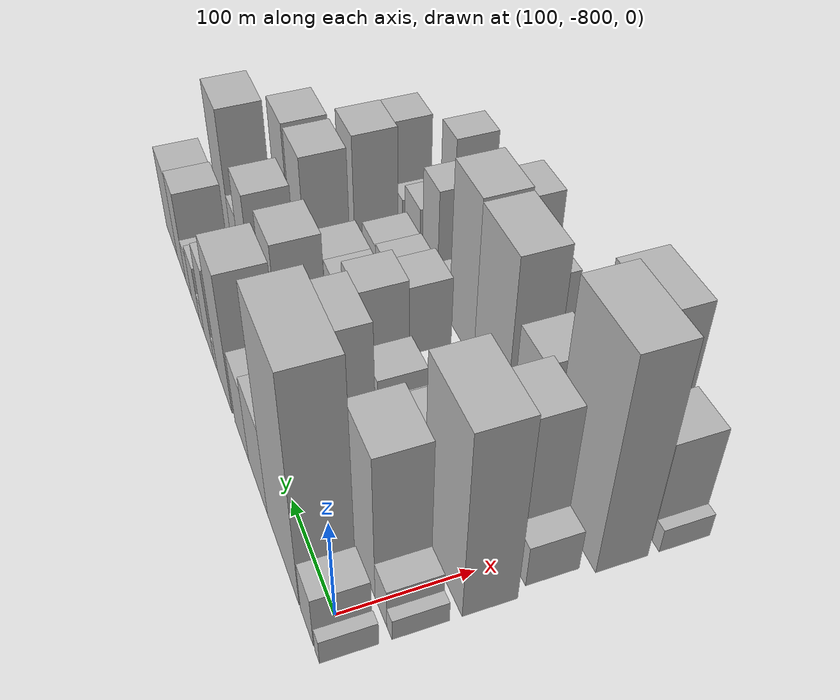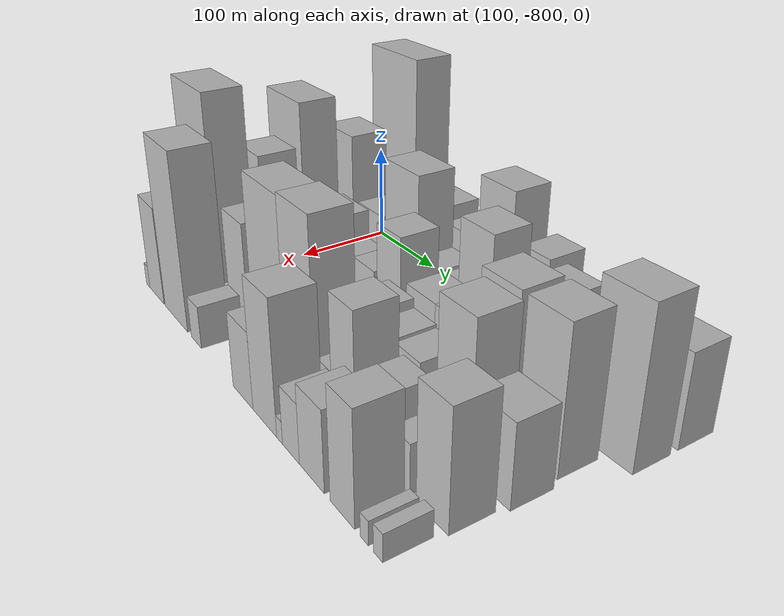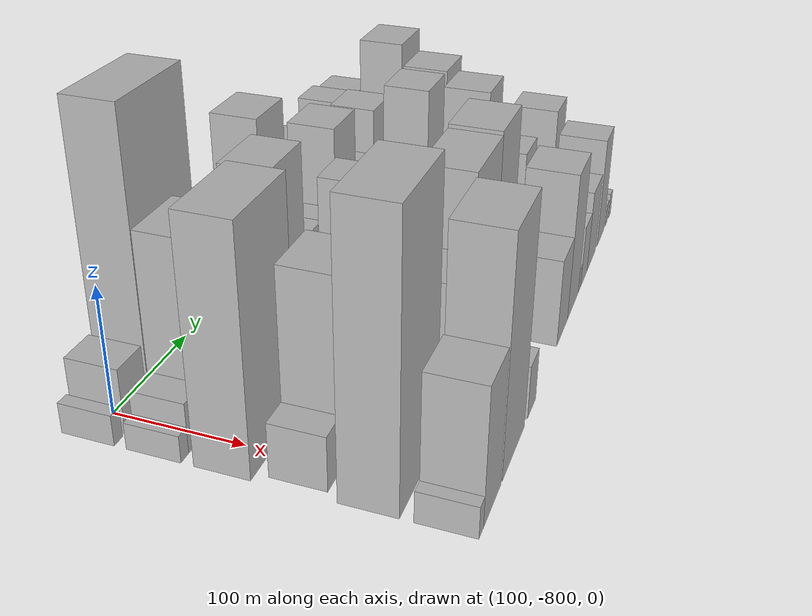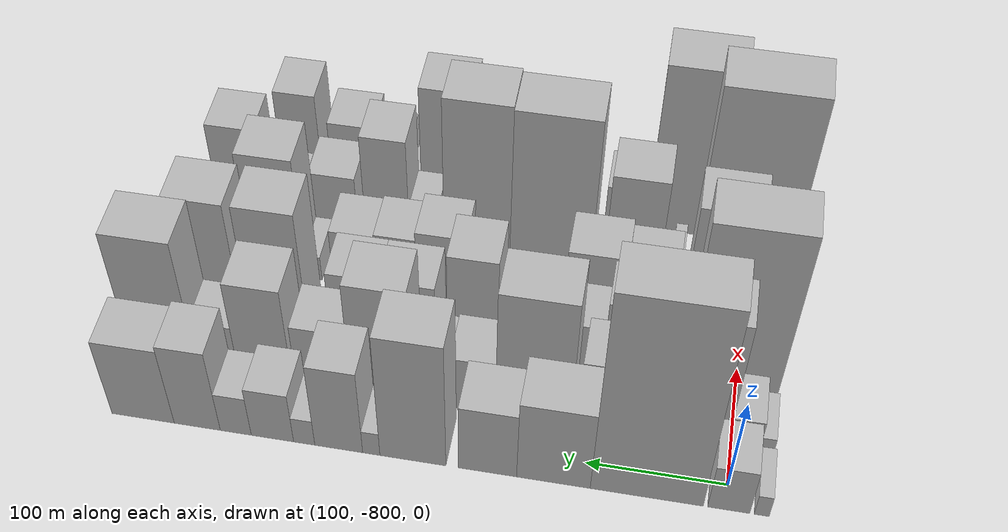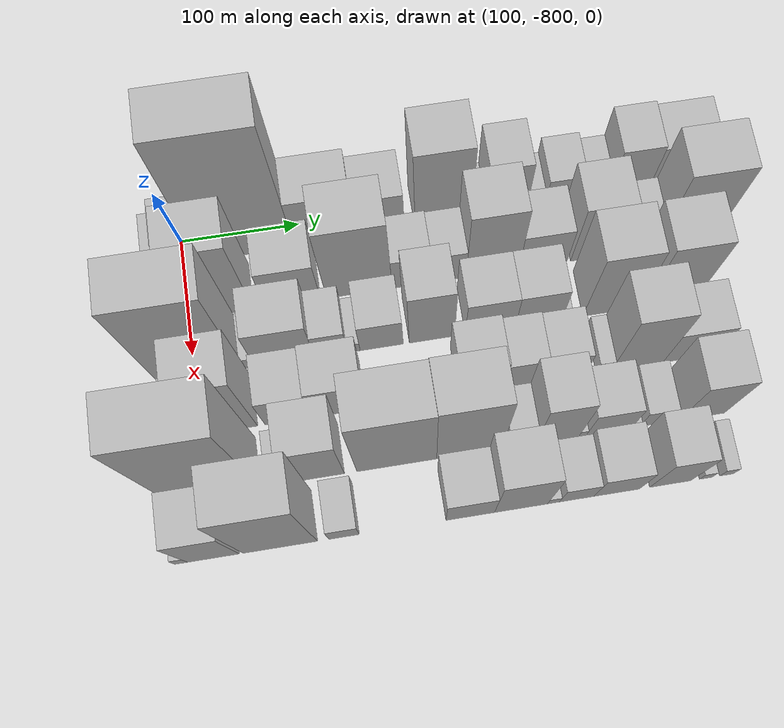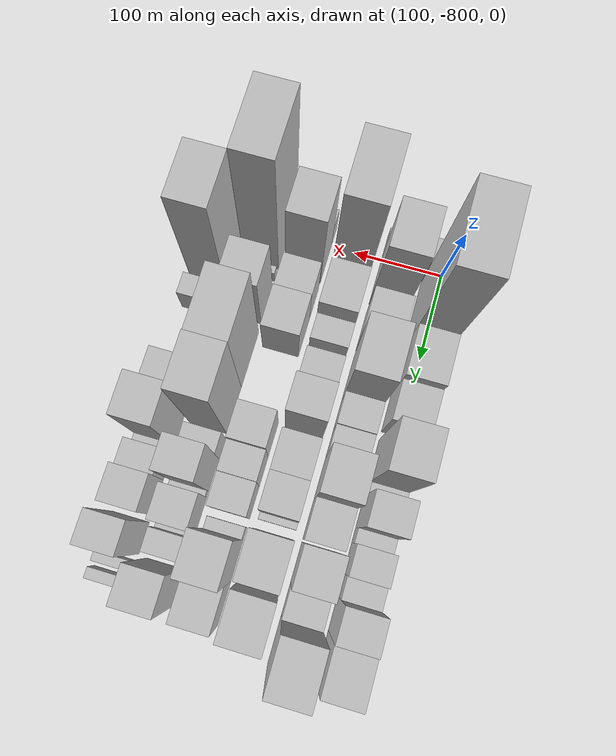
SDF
<sdf version="1.6">
 <world name="default">
  <model name="building_1">
   <static>1</static>
   <pose>100.0000 -824.8675 0 0.000000 0.000000 0.000000</pose>
   <link name="link">
    <pose>0 0 12.00 0 0 0</pose>
    <collision name="collision"><geometry><box><size>40.0000 10.2650 24.0000</size></box></geometry></collision>
    <visual name="visual">
     <cast_shadows>0</cast_shadows>
     <geometry><box><size>40.0000 10.2650 24.0000</size></box></geometry>
     <material>
      <script>
       <uri>model://HANNAS_wall/materials/scripts</uri>
       <uri>model://HANNAS_wall/materials/textures</uri>
       <name>vrc/HANNAS_wall</name>
      </script>
     </material>
    </visual>
   </link>
  </model>
  <model name="building_2">
   <static>1</static>
   <pose>100.0000 -802.2113 0 0.000000 0.000000 0.000000</pose>
   <link name="link">
    <pose>0 0 25.50 0 0 0</pose>
    <collision name="collision"><geometry><box><size>40.0000 29.0475 51.0000</size></box></geometry></collision>
    <visual name="visual">
     <cast_shadows>0</cast_shadows>
     <geometry><box><size>40.0000 29.0475 51.0000</size></box></geometry>
     <material>
      <script>
       <uri>model://HANNAS_wall/materials/scripts</uri>
       <uri>model://HANNAS_wall/materials/textures</uri>
       <name>vrc/HANNAS_wall</name>
      </script>
     </material>
    </visual>
   </link>
  </model>
  <model name="building_3">
   <static>1</static>
   <pose>100.0000 -745.2766 0 0.000000 0.000000 0.000000</pose>
   <link name="link">
    <pose>0 0 111.00 0 0 0</pose>
    <collision name="collision"><geometry><box><size>40.0000 78.8218 222.0000</size></box></geometry></collision>
    <visual name="visual">
     <cast_shadows>0</cast_shadows>
     <geometry><box><size>40.0000 78.8218 222.0000</size></box></geometry>
     <material>
      <script>
       <uri>model://HANNAS_wall/materials/scripts</uri>
       <uri>model://HANNAS_wall/materials/textures</uri>
       <name>vrc/HANNAS_wall</name>
      </script>
     </material>
    </visual>
   </link>
  </model>
  <model name="building_4">
   <static>1</static>
   <pose>100.0000 -679.8648 0 0.000000 0.000000 0.000000</pose>
   <link name="link">
    <pose>0 0 45.00 0 0 0</pose>
    <collision name="collision"><geometry><box><size>40.0000 52.0016 90.0000</size></box></geometry></collision>
    <visual name="visual">
     <cast_shadows>0</cast_shadows>
     <geometry><box><size>40.0000 52.0016 90.0000</size></box></geometry>
     <material>
      <script>
       <uri>model://HANNAS_wall/materials/scripts</uri>
       <uri>model://HANNAS_wall/materials/textures</uri>
       <name>vrc/HANNAS_wall</name>
      </script>
     </material>
    </visual>
   </link>
  </model>
  <model name="building_5">
   <static>1</static>
   <pose>100.0000 -633.1377 0 0.000000 0.000000 0.000000</pose>
   <link name="link">
    <pose>0 0 37.50 0 0 0</pose>
    <collision name="collision"><geometry><box><size>40.0000 41.4525 75.0000</size></box></geometry></collision>
    <visual name="visual">
     <cast_shadows>0</cast_shadows>
     <geometry><box><size>40.0000 41.4525 75.0000</size></box></geometry>
     <material>
      <script>
       <uri>model://HANNAS_wall/materials/scripts</uri>
       <uri>model://HANNAS_wall/materials/textures</uri>
       <name>vrc/HANNAS_wall</name>
      </script>
     </material>
    </visual>
   </link>
  </model>
  <model name="building_6">
   <static>1</static>
   <pose>100.0000 -579.5908 0 0.000000 0.000000 0.000000</pose>
   <link name="link">
    <pose>0 0 70.50 0 0 0</pose>
    <collision name="collision"><geometry><box><size>40.0000 47.6413 141.0000</size></box></geometry></collision>
    <visual name="visual">
     <cast_shadows>0</cast_shadows>
     <geometry><box><size>40.0000 47.6413 141.0000</size></box></geometry>
     <material>
      <script>
       <uri>model://HANNAS_wall/materials/scripts</uri>
       <uri>model://HANNAS_wall/materials/textures</uri>
       <name>vrc/HANNAS_wall</name>
      </script>
     </material>
    </visual>
   </link>
  </model>
  <model name="building_7">
   <static>1</static>
   <pose>100.0000 -549.5159 0 0.000000 0.000000 0.000000</pose>
   <link name="link">
    <pose>0 0 13.50 0 0 0</pose>
    <collision name="collision"><geometry><box><size>40.0000 12.5085 27.0000</size></box></geometry></collision>
    <visual name="visual">
     <cast_shadows>0</cast_shadows>
     <geometry><box><size>40.0000 12.5085 27.0000</size></box></geometry>
     <material>
      <script>
       <uri>model://HANNAS_wall/materials/scripts</uri>
       <uri>model://HANNAS_wall/materials/textures</uri>
       <name>vrc/HANNAS_wall</name>
      </script>
     </material>
    </visual>
   </link>
  </model>
  <model name="building_8">
   <static>1</static>
   <pose>100.0000 -525.7927 0 0.000000 0.000000 0.000000</pose>
   <link name="link">
    <pose>0 0 48.00 0 0 0</pose>
    <collision name="collision"><geometry><box><size>40.0000 34.9379 96.0000</size></box></geometry></collision>
    <visual name="visual">
     <cast_shadows>0</cast_shadows>
     <geometry><box><size>40.0000 34.9379 96.0000</size></box></geometry>
     <material>
      <script>
       <uri>model://HANNAS_wall/materials/scripts</uri>
       <uri>model://HANNAS_wall/materials/textures</uri>
       <name>vrc/HANNAS_wall</name>
      </script>
     </material>
    </visual>
   </link>
  </model>
  <model name="building_9">
   <static>1</static>
   <pose>100.0000 -500.5499 0 0.000000 0.000000 0.000000</pose>
   <link name="link">
    <pose>0 0 15.00 0 0 0</pose>
    <collision name="collision"><geometry><box><size>40.0000 15.5478 30.0000</size></box></geometry></collision>
    <visual name="visual">
     <cast_shadows>0</cast_shadows>
     <geometry><box><size>40.0000 15.5478 30.0000</size></box></geometry>
     <material>
      <script>
       <uri>model://HANNAS_wall/materials/scripts</uri>
       <uri>model://HANNAS_wall/materials/textures</uri>
       <name>vrc/HANNAS_wall</name>
      </script>
     </material>
    </visual>
   </link>
  </model>
  <model name="building_10">
   <static>1</static>
   <pose>100.0000 -477.1615 0 0.000000 0.000000 0.000000</pose>
   <link name="link">
    <pose>0 0 28.50 0 0 0</pose>
    <collision name="collision"><geometry><box><size>40.0000 31.2288 57.0000</size></box></geometry></collision>
    <visual name="visual">
     <cast_shadows>0</cast_shadows>
     <geometry><box><size>40.0000 31.2288 57.0000</size></box></geometry>
     <material>
      <script>
       <uri>model://HANNAS_wall/materials/scripts</uri>
       <uri>model://HANNAS_wall/materials/textures</uri>
       <name>vrc/HANNAS_wall</name>
      </script>
     </material>
    </visual>
   </link>
  </model>
  <model name="building_11">
   <static>1</static>
   <pose>100.0000 -450.0540 0 0.000000 0.000000 0.000000</pose>
   <link name="link">
    <pose>0 0 22.50 0 0 0</pose>
    <collision name="collision"><geometry><box><size>40.0000 22.9864 45.0000</size></box></geometry></collision>
    <visual name="visual">
     <cast_shadows>0</cast_shadows>
     <geometry><box><size>40.0000 22.9864 45.0000</size></box></geometry>
     <material>
      <script>
       <uri>model://HANNAS_wall/materials/scripts</uri>
       <uri>model://HANNAS_wall/materials/textures</uri>
       <name>vrc/HANNAS_wall</name>
      </script>
     </material>
    </visual>
   </link>
  </model>
  <model name="building_12">
   <static>1</static>
   <pose>100.0000 -421.3638 0 0.000000 0.000000 0.000000</pose>
   <link name="link">
    <pose>0 0 46.50 0 0 0</pose>
    <collision name="collision"><geometry><box><size>40.0000 34.3939 93.0000</size></box></geometry></collision>
    <visual name="visual">
     <cast_shadows>0</cast_shadows>
     <geometry><box><size>40.0000 34.3939 93.0000</size></box></geometry>
     <material>
      <script>
       <uri>model://HANNAS_wall/materials/scripts</uri>
       <uri>model://HANNAS_wall/materials/textures</uri>
       <name>vrc/HANNAS_wall</name>
      </script>
     </material>
    </visual>
   </link>
  </model>
  <model name="building_13">
   <static>1</static>
   <pose>100.0000 -380.7621 0 0.000000 0.000000 0.000000</pose>
   <link name="link">
    <pose>0 0 43.50 0 0 0</pose>
    <collision name="collision"><geometry><box><size>40.0000 46.8095 87.0000</size></box></geometry></collision>
    <visual name="visual">
     <cast_shadows>0</cast_shadows>
     <geometry><box><size>40.0000 46.8095 87.0000</size></box></geometry>
     <material>
      <script>
       <uri>model://HANNAS_wall/materials/scripts</uri>
       <uri>model://HANNAS_wall/materials/textures</uri>
       <name>vrc/HANNAS_wall</name>
      </script>
     </material>
    </visual>
   </link>
  </model>
  <model name="building_47">
   <static>1</static>
   <pose>149.0000 -824.9712 0 0.000000 0.000000 0.000000</pose>
   <link name="link">
    <pose>0 0 10.50 0 0 0</pose>
    <collision name="collision"><geometry><box><size>40.0000 10.0576 21.0000</size></box></geometry></collision>
    <visual name="visual">
     <cast_shadows>0</cast_shadows>
     <geometry><box><size>40.0000 10.0576 21.0000</size></box></geometry>
     <material>
      <script>
       <uri>model://HANNAS_wall/materials/scripts</uri>
       <uri>model://HANNAS_wall/materials/textures</uri>
       <name>vrc/HANNAS_wall</name>
      </script>
     </material>
    </visual>
   </link>
  </model>
  <model name="building_48">
   <static>1</static>
   <pose>149.0000 -808.4320 0 0.000000 0.000000 0.000000</pose>
   <link name="link">
    <pose>0 0 19.50 0 0 0</pose>
    <collision name="collision"><geometry><box><size>40.0000 23.0208 39.0000</size></box></geometry></collision>
    <visual name="visual">
     <cast_shadows>0</cast_shadows>
     <geometry><box><size>40.0000 23.0208 39.0000</size></box></geometry>
     <material>
      <script>
       <uri>model://HANNAS_wall/materials/scripts</uri>
       <uri>model://HANNAS_wall/materials/textures</uri>
       <name>vrc/HANNAS_wall</name>
      </script>
     </material>
    </visual>
   </link>
  </model>
  <model name="building_49">
   <static>1</static>
   <pose>149.0000 -771.4992 0 0.000000 0.000000 0.000000</pose>
   <link name="link">
    <pose>0 0 72.00 0 0 0</pose>
    <collision name="collision"><geometry><box><size>40.0000 50.8447 144.0000</size></box></geometry></collision>
    <visual name="visual">
     <cast_shadows>0</cast_shadows>
     <geometry><box><size>40.0000 50.8447 144.0000</size></box></geometry>
     <material>
      <script>
       <uri>model://HANNAS_wall/materials/scripts</uri>
       <uri>model://HANNAS_wall/materials/textures</uri>
       <name>vrc/HANNAS_wall</name>
      </script>
     </material>
    </visual>
   </link>
  </model>
  <model name="building_50">
   <static>1</static>
   <pose>149.0000 -713.2010 0 0.000000 0.000000 0.000000</pose>
   <link name="link">
    <pose>0 0 39.00 0 0 0</pose>
    <collision name="collision"><geometry><box><size>40.0000 45.7518 78.0000</size></box></geometry></collision>
    <visual name="visual">
     <cast_shadows>0</cast_shadows>
     <geometry><box><size>40.0000 45.7518 78.0000</size></box></geometry>
     <material>
      <script>
       <uri>model://HANNAS_wall/materials/scripts</uri>
       <uri>model://HANNAS_wall/materials/textures</uri>
       <name>vrc/HANNAS_wall</name>
      </script>
     </material>
    </visual>
   </link>
  </model>
  <model name="building_51">
   <static>1</static>
   <pose>149.0000 -657.8623 0 0.000000 0.000000 0.000000</pose>
   <link name="link">
    <pose>0 0 70.50 0 0 0</pose>
    <collision name="collision"><geometry><box><size>40.0000 54.9256 141.0000</size></box></geometry></collision>
    <visual name="visual">
     <cast_shadows>0</cast_shadows>
     <geometry><box><size>40.0000 54.9256 141.0000</size></box></geometry>
     <material>
      <script>
       <uri>model://HANNAS_wall/materials/scripts</uri>
       <uri>model://HANNAS_wall/materials/textures</uri>
       <name>vrc/HANNAS_wall</name>
      </script>
     </material>
    </visual>
   </link>
  </model>
  <model name="building_52">
   <static>1</static>
   <pose>149.0000 -613.7889 0 0.000000 0.000000 0.000000</pose>
   <link name="link">
    <pose>0 0 30.00 0 0 0</pose>
    <collision name="collision"><geometry><box><size>40.0000 33.2211 60.0000</size></box></geometry></collision>
    <visual name="visual">
     <cast_shadows>0</cast_shadows>
     <geometry><box><size>40.0000 33.2211 60.0000</size></box></geometry>
     <material>
      <script>
       <uri>model://HANNAS_wall/materials/scripts</uri>
       <uri>model://HANNAS_wall/materials/textures</uri>
       <name>vrc/HANNAS_wall</name>
      </script>
     </material>
    </visual>
   </link>
  </model>
  <model name="building_53">
   <static>1</static>
   <pose>149.0000 -582.6261 0 0.000000 0.000000 0.000000</pose>
   <link name="link">
    <pose>0 0 28.50 0 0 0</pose>
    <collision name="collision"><geometry><box><size>40.0000 29.1044 57.0000</size></box></geometry></collision>
    <visual name="visual">
     <cast_shadows>0</cast_shadows>
     <geometry><box><size>40.0000 29.1044 57.0000</size></box></geometry>
     <material>
      <script>
       <uri>model://HANNAS_wall/materials/scripts</uri>
       <uri>model://HANNAS_wall/materials/textures</uri>
       <name>vrc/HANNAS_wall</name>
      </script>
     </material>
    </visual>
   </link>
  </model>
  <model name="building_54">
   <static>1</static>
   <pose>149.0000 -545.7749 0 0.000000 0.000000 0.000000</pose>
   <link name="link">
    <pose>0 0 63.00 0 0 0</pose>
    <collision name="collision"><geometry><box><size>40.0000 44.5981 126.0000</size></box></geometry></collision>
    <visual name="visual">
     <cast_shadows>0</cast_shadows>
     <geometry><box><size>40.0000 44.5981 126.0000</size></box></geometry>
     <material>
      <script>
       <uri>model://HANNAS_wall/materials/scripts</uri>
       <uri>model://HANNAS_wall/materials/textures</uri>
       <name>vrc/HANNAS_wall</name>
      </script>
     </material>
    </visual>
   </link>
  </model>
  <model name="building_55">
   <static>1</static>
   <pose>149.0000 -502.8956 0 0.000000 0.000000 0.000000</pose>
   <link name="link">
    <pose>0 0 34.50 0 0 0</pose>
    <collision name="collision"><geometry><box><size>40.0000 41.1606 69.0000</size></box></geometry></collision>
    <visual name="visual">
     <cast_shadows>0</cast_shadows>
     <geometry><box><size>40.0000 41.1606 69.0000</size></box></geometry>
     <material>
      <script>
       <uri>model://HANNAS_wall/materials/scripts</uri>
       <uri>model://HANNAS_wall/materials/textures</uri>
       <name>vrc/HANNAS_wall</name>
      </script>
     </material>
    </visual>
   </link>
  </model>
  <model name="building_56">
   <static>1</static>
   <pose>149.0000 -458.9289 0 0.000000 0.000000 0.000000</pose>
   <link name="link">
    <pose>0 0 54.00 0 0 0</pose>
    <collision name="collision"><geometry><box><size>40.0000 40.7729 108.0000</size></box></geometry></collision>
    <visual name="visual">
     <cast_shadows>0</cast_shadows>
     <geometry><box><size>40.0000 40.7729 108.0000</size></box></geometry>
     <material>
      <script>
       <uri>model://HANNAS_wall/materials/scripts</uri>
       <uri>model://HANNAS_wall/materials/textures</uri>
       <name>vrc/HANNAS_wall</name>
      </script>
     </material>
    </visual>
   </link>
  </model>
  <model name="building_57">
   <static>1</static>
   <pose>149.0000 -422.8990 0 0.000000 0.000000 0.000000</pose>
   <link name="link">
    <pose>0 0 28.50 0 0 0</pose>
    <collision name="collision"><geometry><box><size>40.0000 31.2869 57.0000</size></box></geometry></collision>
    <visual name="visual">
     <cast_shadows>0</cast_shadows>
     <geometry><box><size>40.0000 31.2869 57.0000</size></box></geometry>
     <material>
      <script>
       <uri>model://HANNAS_wall/materials/scripts</uri>
       <uri>model://HANNAS_wall/materials/textures</uri>
       <name>vrc/HANNAS_wall</name>
      </script>
     </material>
    </visual>
   </link>
  </model>
  <model name="building_58">
   <static>1</static>
   <pose>149.0000 -382.1642 0 0.000000 0.000000 0.000000</pose>
   <link name="link">
    <pose>0 0 72.00 0 0 0</pose>
    <collision name="collision"><geometry><box><size>40.0000 50.1827 144.0000</size></box></geometry></collision>
    <visual name="visual">
     <cast_shadows>0</cast_shadows>
     <geometry><box><size>40.0000 50.1827 144.0000</size></box></geometry>
     <material>
      <script>
       <uri>model://HANNAS_wall/materials/scripts</uri>
       <uri>model://HANNAS_wall/materials/textures</uri>
       <name>vrc/HANNAS_wall</name>
      </script>
     </material>
    </visual>
   </link>
  </model>
  <model name="building_95">
   <static>1</static>
   <pose>198.0000 -795.2892 0 0.000000 0.000000 0.000000</pose>
   <link name="link">
    <pose>0 0 91.50 0 0 0</pose>
    <collision name="collision"><geometry><box><size>40.0000 69.4216 183.0000</size></box></geometry></collision>
    <visual name="visual">
     <cast_shadows>0</cast_shadows>
     <geometry><box><size>40.0000 69.4216 183.0000</size></box></geometry>
     <material>
      <script>
       <uri>model://HANNAS_wall/materials/scripts</uri>
       <uri>model://HANNAS_wall/materials/textures</uri>
       <name>vrc/HANNAS_wall</name>
      </script>
     </material>
    </visual>
   </link>
  </model>
  <model name="building_96">
   <static>1</static>
   <pose>198.0000 -755.6669 0 0.000000 0.000000 0.000000</pose>
   <link name="link">
    <pose>0 0 12.00 0 0 0</pose>
    <collision name="collision"><geometry><box><size>40.0000 9.8230 24.0000</size></box></geometry></collision>
    <visual name="visual">
     <cast_shadows>0</cast_shadows>
     <geometry><box><size>40.0000 9.8230 24.0000</size></box></geometry>
     <material>
      <script>
       <uri>model://HANNAS_wall/materials/scripts</uri>
       <uri>model://HANNAS_wall/materials/textures</uri>
       <name>vrc/HANNAS_wall</name>
      </script>
     </material>
    </visual>
   </link>
  </model>
  <model name="building_97">
   <static>1</static>
   <pose>198.0000 -726.2646 0 0.000000 0.000000 0.000000</pose>
   <link name="link">
    <pose>0 0 42.00 0 0 0</pose>
    <collision name="collision"><geometry><box><size>40.0000 48.9817 84.0000</size></box></geometry></collision>
    <visual name="visual">
     <cast_shadows>0</cast_shadows>
     <geometry><box><size>40.0000 48.9817 84.0000</size></box></geometry>
     <material>
      <script>
       <uri>model://HANNAS_wall/materials/scripts</uri>
       <uri>model://HANNAS_wall/materials/textures</uri>
       <name>vrc/HANNAS_wall</name>
      </script>
     </material>
    </visual>
   </link>
  </model>
  <model name="building_98">
   <static>1</static>
   <pose>198.0000 -688.1808 0 0.000000 0.000000 0.000000</pose>
   <link name="link">
    <pose>0 0 27.00 0 0 0</pose>
    <collision name="collision"><geometry><box><size>40.0000 27.1858 54.0000</size></box></geometry></collision>
    <visual name="visual">
     <cast_shadows>0</cast_shadows>
     <geometry><box><size>40.0000 27.1858 54.0000</size></box></geometry>
     <material>
      <script>
       <uri>model://HANNAS_wall/materials/scripts</uri>
       <uri>model://HANNAS_wall/materials/textures</uri>
       <name>vrc/HANNAS_wall</name>
      </script>
     </material>
    </visual>
   </link>
  </model>
  <model name="building_99">
   <static>1</static>
   <pose>198.0000 -669.4647 0 0.000000 0.000000 0.000000</pose>
   <link name="link">
    <pose>0 0 10.50 0 0 0</pose>
    <collision name="collision"><geometry><box><size>40.0000 10.2464 21.0000</size></box></geometry></collision>
    <visual name="visual">
     <cast_shadows>0</cast_shadows>
     <geometry><box><size>40.0000 10.2464 21.0000</size></box></geometry>
     <material>
      <script>
       <uri>model://HANNAS_wall/materials/scripts</uri>
       <uri>model://HANNAS_wall/materials/textures</uri>
       <name>vrc/HANNAS_wall</name>
      </script>
     </material>
    </visual>
   </link>
  </model>
  <model name="building_100">
   <static>1</static>
   <pose>198.0000 -646.4676 0 0.000000 0.000000 0.000000</pose>
   <link name="link">
    <pose>0 0 30.00 0 0 0</pose>
    <collision name="collision"><geometry><box><size>40.0000 35.7478 60.0000</size></box></geometry></collision>
    <visual name="visual">
     <cast_shadows>0</cast_shadows>
     <geometry><box><size>40.0000 35.7478 60.0000</size></box></geometry>
     <material>
      <script>
       <uri>model://HANNAS_wall/materials/scripts</uri>
       <uri>model://HANNAS_wall/materials/textures</uri>
       <name>vrc/HANNAS_wall</name>
      </script>
     </material>
    </visual>
   </link>
  </model>
  <model name="building_101">
   <static>1</static>
   <pose>198.0000 -604.8527 0 0.000000 0.000000 0.000000</pose>
   <link name="link">
    <pose>0 0 55.50 0 0 0</pose>
    <collision name="collision"><geometry><box><size>40.0000 37.4819 111.0000</size></box></geometry></collision>
    <visual name="visual">
     <cast_shadows>0</cast_shadows>
     <geometry><box><size>40.0000 37.4819 111.0000</size></box></geometry>
     <material>
      <script>
       <uri>model://HANNAS_wall/materials/scripts</uri>
       <uri>model://HANNAS_wall/materials/textures</uri>
       <name>vrc/HANNAS_wall</name>
      </script>
     </material>
    </visual>
   </link>
  </model>
  <model name="building_102">
   <static>1</static>
   <pose>198.0000 -556.2402 0 0.000000 0.000000 0.000000</pose>
   <link name="link">
    <pose>0 0 36.00 0 0 0</pose>
    <collision name="collision"><geometry><box><size>40.0000 41.7433 72.0000</size></box></geometry></collision>
    <visual name="visual">
     <cast_shadows>0</cast_shadows>
     <geometry><box><size>40.0000 41.7433 72.0000</size></box></geometry>
     <material>
      <script>
       <uri>model://HANNAS_wall/materials/scripts</uri>
       <uri>model://HANNAS_wall/materials/textures</uri>
       <name>vrc/HANNAS_wall</name>
      </script>
     </material>
    </visual>
   </link>
  </model>
  <model name="building_103">
   <static>1</static>
   <pose>198.0000 -515.8953 0 0.000000 0.000000 0.000000</pose>
   <link name="link">
    <pose>0 0 36.00 0 0 0</pose>
    <collision name="collision"><geometry><box><size>40.0000 38.9466 72.0000</size></box></geometry></collision>
    <visual name="visual">
     <cast_shadows>0</cast_shadows>
     <geometry><box><size>40.0000 38.9466 72.0000</size></box></geometry>
     <material>
      <script>
       <uri>model://HANNAS_wall/materials/scripts</uri>
       <uri>model://HANNAS_wall/materials/textures</uri>
       <name>vrc/HANNAS_wall</name>
      </script>
     </material>
    </visual>
   </link>
  </model>
  <model name="building_104">
   <static>1</static>
   <pose>198.0000 -492.6270 0 0.000000 0.000000 0.000000</pose>
   <link name="link">
    <pose>0 0 9.00 0 0 0</pose>
    <collision name="collision"><geometry><box><size>40.0000 7.5900 18.0000</size></box></geometry></collision>
    <visual name="visual">
     <cast_shadows>0</cast_shadows>
     <geometry><box><size>40.0000 7.5900 18.0000</size></box></geometry>
     <material>
      <script>
       <uri>model://HANNAS_wall/materials/scripts</uri>
       <uri>model://HANNAS_wall/materials/textures</uri>
       <name>vrc/HANNAS_wall</name>
      </script>
     </material>
    </visual>
   </link>
  </model>
  <model name="building_105">
   <static>1</static>
   <pose>198.0000 -456.3361 0 0.000000 0.000000 0.000000</pose>
   <link name="link">
    <pose>0 0 66.00 0 0 0</pose>
    <collision name="collision"><geometry><box><size>40.0000 44.9917 132.0000</size></box></geometry></collision>
    <visual name="visual">
     <cast_shadows>0</cast_shadows>
     <geometry><box><size>40.0000 44.9917 132.0000</size></box></geometry>
     <material>
      <script>
       <uri>model://HANNAS_wall/materials/scripts</uri>
       <uri>model://HANNAS_wall/materials/textures</uri>
       <name>vrc/HANNAS_wall</name>
      </script>
     </material>
    </visual>
   </link>
  </model>
  <model name="building_106">
   <static>1</static>
   <pose>198.0000 -405.4915 0 0.000000 0.000000 0.000000</pose>
   <link name="link">
    <pose>0 0 66.00 0 0 0</pose>
    <collision name="collision"><geometry><box><size>40.0000 44.6975 132.0000</size></box></geometry></collision>
    <visual name="visual">
     <cast_shadows>0</cast_shadows>
     <geometry><box><size>40.0000 44.6975 132.0000</size></box></geometry>
     <material>
      <script>
       <uri>model://HANNAS_wall/materials/scripts</uri>
       <uri>model://HANNAS_wall/materials/textures</uri>
       <name>vrc/HANNAS_wall</name>
      </script>
     </material>
    </visual>
   </link>
  </model>
  <model name="building_144">
   <static>1</static>
   <pose>247.0000 -811.7313 0 0.000000 0.000000 0.000000</pose>
   <link name="link">
    <pose>0 0 21.00 0 0 0</pose>
    <collision name="collision"><geometry><box><size>40.0000 22.5374 42.0000</size></box></geometry></collision>
    <visual name="visual">
     <cast_shadows>0</cast_shadows>
     <geometry><box><size>40.0000 22.5374 42.0000</size></box></geometry>
     <material>
      <script>
       <uri>model://HANNAS_wall/materials/scripts</uri>
       <uri>model://HANNAS_wall/materials/textures</uri>
       <name>vrc/HANNAS_wall</name>
      </script>
     </material>
    </visual>
   </link>
  </model>
  <model name="building_145">
   <static>1</static>
   <pose>247.0000 -777.3531 0 0.000000 0.000000 0.000000</pose>
   <link name="link">
    <pose>0 0 70.50 0 0 0</pose>
    <collision name="collision"><geometry><box><size>40.0000 46.2192 141.0000</size></box></geometry></collision>
    <visual name="visual">
     <cast_shadows>0</cast_shadows>
     <geometry><box><size>40.0000 46.2192 141.0000</size></box></geometry>
     <material>
      <script>
       <uri>model://HANNAS_wall/materials/scripts</uri>
       <uri>model://HANNAS_wall/materials/textures</uri>
       <name>vrc/HANNAS_wall</name>
      </script>
     </material>
    </visual>
   </link>
  </model>
  <model name="building_146">
   <static>1</static>
   <pose>247.0000 -729.4697 0 0.000000 0.000000 0.000000</pose>
   <link name="link">
    <pose>0 0 34.50 0 0 0</pose>
    <collision name="collision"><geometry><box><size>40.0000 37.5476 69.0000</size></box></geometry></collision>
    <visual name="visual">
     <cast_shadows>0</cast_shadows>
     <geometry><box><size>40.0000 37.5476 69.0000</size></box></geometry>
     <material>
      <script>
       <uri>model://HANNAS_wall/materials/scripts</uri>
       <uri>model://HANNAS_wall/materials/textures</uri>
       <name>vrc/HANNAS_wall</name>
      </script>
     </material>
    </visual>
   </link>
  </model>
  <model name="building_147">
   <static>1</static>
   <pose>247.0000 -688.6288 0 0.000000 0.000000 0.000000</pose>
   <link name="link">
    <pose>0 0 37.50 0 0 0</pose>
    <collision name="collision"><geometry><box><size>40.0000 44.1342 75.0000</size></box></geometry></collision>
    <visual name="visual">
     <cast_shadows>0</cast_shadows>
     <geometry><box><size>40.0000 44.1342 75.0000</size></box></geometry>
     <material>
      <script>
       <uri>model://HANNAS_wall/materials/scripts</uri>
       <uri>model://HANNAS_wall/materials/textures</uri>
       <name>vrc/HANNAS_wall</name>
      </script>
     </material>
    </visual>
   </link>
  </model>
  <model name="building_148">
   <static>1</static>
   <pose>247.0000 -571.7980 0 0.000000 0.000000 0.000000</pose>
   <link name="link">
    <pose>0 0 36.00 0 0 0</pose>
    <collision name="collision"><geometry><box><size>40.0000 38.5091 72.0000</size></box></geometry></collision>
    <visual name="visual">
     <cast_shadows>0</cast_shadows>
     <geometry><box><size>40.0000 38.5091 72.0000</size></box></geometry>
     <material>
      <script>
       <uri>model://HANNAS_wall/materials/scripts</uri>
       <uri>model://HANNAS_wall/materials/textures</uri>
       <name>vrc/HANNAS_wall</name>
      </script>
     </material>
    </visual>
   </link>
  </model>
  <model name="building_149">
   <static>1</static>
   <pose>247.0000 -536.7040 0 0.000000 0.000000 0.000000</pose>
   <link name="link">
    <pose>0 0 31.50 0 0 0</pose>
    <collision name="collision"><geometry><box><size>40.0000 31.6788 63.0000</size></box></geometry></collision>
    <visual name="visual">
     <cast_shadows>0</cast_shadows>
     <geometry><box><size>40.0000 31.6788 63.0000</size></box></geometry>
     <material>
      <script>
       <uri>model://HANNAS_wall/materials/scripts</uri>
       <uri>model://HANNAS_wall/materials/textures</uri>
       <name>vrc/HANNAS_wall</name>
      </script>
     </material>
    </visual>
   </link>
  </model>
  <model name="building_150">
   <static>1</static>
   <pose>247.0000 -503.6989 0 0.000000 0.000000 0.000000</pose>
   <link name="link">
    <pose>0 0 30.00 0 0 0</pose>
    <collision name="collision"><geometry><box><size>40.0000 34.3315 60.0000</size></box></geometry></collision>
    <visual name="visual">
     <cast_shadows>0</cast_shadows>
     <geometry><box><size>40.0000 34.3315 60.0000</size></box></geometry>
     <material>
      <script>
       <uri>model://HANNAS_wall/materials/scripts</uri>
       <uri>model://HANNAS_wall/materials/textures</uri>
       <name>vrc/HANNAS_wall</name>
      </script>
     </material>
    </visual>
   </link>
  </model>
  <model name="building_151">
   <static>1</static>
   <pose>247.0000 -471.0917 0 0.000000 0.000000 0.000000</pose>
   <link name="link">
    <pose>0 0 13.50 0 0 0</pose>
    <collision name="collision"><geometry><box><size>40.0000 12.8828 27.0000</size></box></geometry></collision>
    <visual name="visual">
     <cast_shadows>0</cast_shadows>
     <geometry><box><size>40.0000 12.8828 27.0000</size></box></geometry>
     <material>
      <script>
       <uri>model://HANNAS_wall/materials/scripts</uri>
       <uri>model://HANNAS_wall/materials/textures</uri>
       <name>vrc/HANNAS_wall</name>
      </script>
     </material>
    </visual>
   </link>
  </model>
  <model name="building_152">
   <static>1</static>
   <pose>247.0000 -443.2675 0 0.000000 0.000000 0.000000</pose>
   <link name="link">
    <pose>0 0 66.00 0 0 0</pose>
    <collision name="collision"><geometry><box><size>40.0000 42.7657 132.0000</size></box></geometry></collision>
    <visual name="visual">
     <cast_shadows>0</cast_shadows>
     <geometry><box><size>40.0000 42.7657 132.0000</size></box></geometry>
     <material>
      <script>
       <uri>model://HANNAS_wall/materials/scripts</uri>
       <uri>model://HANNAS_wall/materials/textures</uri>
       <name>vrc/HANNAS_wall</name>
      </script>
     </material>
    </visual>
   </link>
  </model>
  <model name="building_153">
   <static>1</static>
   <pose>247.0000 -399.6016 0 0.000000 0.000000 0.000000</pose>
   <link name="link">
    <pose>0 0 37.50 0 0 0</pose>
    <collision name="collision"><geometry><box><size>40.0000 44.5660 75.0000</size></box></geometry></collision>
    <visual name="visual">
     <cast_shadows>0</cast_shadows>
     <geometry><box><size>40.0000 44.5660 75.0000</size></box></geometry>
     <material>
      <script>
       <uri>model://HANNAS_wall/materials/scripts</uri>
       <uri>model://HANNAS_wall/materials/textures</uri>
       <name>vrc/HANNAS_wall</name>
      </script>
     </material>
    </visual>
   </link>
  </model>
  <model name="building_190">
   <static>1</static>
   <pose>296.0000 -793.6686 0 0.000000 0.000000 0.000000</pose>
   <link name="link">
    <pose>0 0 105.00 0 0 0</pose>
    <collision name="collision"><geometry><box><size>40.0000 72.6628 210.0000</size></box></geometry></collision>
    <visual name="visual">
     <cast_shadows>0</cast_shadows>
     <geometry><box><size>40.0000 72.6628 210.0000</size></box></geometry>
     <material>
      <script>
       <uri>model://HANNAS_wall/materials/scripts</uri>
       <uri>model://HANNAS_wall/materials/textures</uri>
       <name>vrc/HANNAS_wall</name>
      </script>
     </material>
    </visual>
   </link>
  </model>
  <model name="building_191">
   <static>1</static>
   <pose>296.0000 -746.9479 0 0.000000 0.000000 0.000000</pose>
   <link name="link">
    <pose>0 0 10.50 0 0 0</pose>
    <collision name="collision"><geometry><box><size>40.0000 8.7785 21.0000</size></box></geometry></collision>
    <visual name="visual">
     <cast_shadows>0</cast_shadows>
     <geometry><box><size>40.0000 8.7785 21.0000</size></box></geometry>
     <material>
      <script>
       <uri>model://HANNAS_wall/materials/scripts</uri>
       <uri>model://HANNAS_wall/materials/textures</uri>
       <name>vrc/HANNAS_wall</name>
      </script>
     </material>
    </visual>
   </link>
  </model>
  <model name="building_192">
   <static>1</static>
   <pose>296.0000 -712.1980 0 0.000000 0.000000 0.000000</pose>
   <link name="link">
    <pose>0 0 54.00 0 0 0</pose>
    <collision name="collision"><geometry><box><size>40.0000 42.7213 108.0000</size></box></geometry></collision>
    <visual name="visual">
     <cast_shadows>0</cast_shadows>
     <geometry><box><size>40.0000 42.7213 108.0000</size></box></geometry>
     <material>
      <script>
       <uri>model://HANNAS_wall/materials/scripts</uri>
       <uri>model://HANNAS_wall/materials/textures</uri>
       <name>vrc/HANNAS_wall</name>
      </script>
     </material>
    </visual>
   </link>
  </model>
  <model name="building_193">
   <static>1</static>
   <pose>296.0000 -648.8478 0 0.000000 0.000000 0.000000</pose>
   <link name="link">
    <pose>0 0 81.00 0 0 0</pose>
    <collision name="collision"><geometry><box><size>40.0000 63.9791 162.0000</size></box></geometry></collision>
    <visual name="visual">
     <cast_shadows>0</cast_shadows>
     <geometry><box><size>40.0000 63.9791 162.0000</size></box></geometry>
     <material>
      <script>
       <uri>model://HANNAS_wall/materials/scripts</uri>
       <uri>model://HANNAS_wall/materials/textures</uri>
       <name>vrc/HANNAS_wall</name>
      </script>
     </material>
    </visual>
   </link>
  </model>
  <model name="building_194">
   <static>1</static>
   <pose>296.0000 -590.6715 0 0.000000 0.000000 0.000000</pose>
   <link name="link">
    <pose>0 0 82.50 0 0 0</pose>
    <collision name="collision"><geometry><box><size>40.0000 52.3737 165.0000</size></box></geometry></collision>
    <visual name="visual">
     <cast_shadows>0</cast_shadows>
     <geometry><box><size>40.0000 52.3737 165.0000</size></box></geometry>
     <material>
      <script>
       <uri>model://HANNAS_wall/materials/scripts</uri>
       <uri>model://HANNAS_wall/materials/textures</uri>
       <name>vrc/HANNAS_wall</name>
      </script>
     </material>
    </visual>
   </link>
  </model>
  <model name="building_195">
   <static>1</static>
   <pose>296.0000 -548.1447 0 0.000000 0.000000 0.000000</pose>
   <link name="link">
    <pose>0 0 21.00 0 0 0</pose>
    <collision name="collision"><geometry><box><size>40.0000 22.6799 42.0000</size></box></geometry></collision>
    <visual name="visual">
     <cast_shadows>0</cast_shadows>
     <geometry><box><size>40.0000 22.6799 42.0000</size></box></geometry>
     <material>
      <script>
       <uri>model://HANNAS_wall/materials/scripts</uri>
       <uri>model://HANNAS_wall/materials/textures</uri>
       <name>vrc/HANNAS_wall</name>
      </script>
     </material>
    </visual>
   </link>
  </model>
  <model name="building_196">
   <static>1</static>
   <pose>296.0000 -519.1598 0 0.000000 0.000000 0.000000</pose>
   <link name="link">
    <pose>0 0 57.00 0 0 0</pose>
    <collision name="collision"><geometry><box><size>40.0000 35.2899 114.0000</size></box></geometry></collision>
    <visual name="visual">
     <cast_shadows>0</cast_shadows>
     <geometry><box><size>40.0000 35.2899 114.0000</size></box></geometry>
     <material>
      <script>
       <uri>model://HANNAS_wall/materials/scripts</uri>
       <uri>model://HANNAS_wall/materials/textures</uri>
       <name>vrc/HANNAS_wall</name>
      </script>
     </material>
    </visual>
   </link>
  </model>
  <model name="building_197">
   <static>1</static>
   <pose>296.0000 -498.4151 0 0.000000 0.000000 0.000000</pose>
   <link name="link">
    <pose>0 0 7.50 0 0 0</pose>
    <collision name="collision"><geometry><box><size>40.0000 6.1994 15.0000</size></box></geometry></collision>
    <visual name="visual">
     <cast_shadows>0</cast_shadows>
     <geometry><box><size>40.0000 6.1994 15.0000</size></box></geometry>
     <material>
      <script>
       <uri>model://HANNAS_wall/materials/scripts</uri>
       <uri>model://HANNAS_wall/materials/textures</uri>
       <name>vrc/HANNAS_wall</name>
      </script>
     </material>
    </visual>
   </link>
  </model>
  <model name="building_198">
   <static>1</static>
   <pose>296.0000 -476.9959 0 0.000000 0.000000 0.000000</pose>
   <link name="link">
    <pose>0 0 33.00 0 0 0</pose>
    <collision name="collision"><geometry><box><size>40.0000 36.6391 66.0000</size></box></geometry></collision>
    <visual name="visual">
     <cast_shadows>0</cast_shadows>
     <geometry><box><size>40.0000 36.6391 66.0000</size></box></geometry>
     <material>
      <script>
       <uri>model://HANNAS_wall/materials/scripts</uri>
       <uri>model://HANNAS_wall/materials/textures</uri>
       <name>vrc/HANNAS_wall</name>
      </script>
     </material>
    </visual>
   </link>
  </model>
  <model name="building_199">
   <static>1</static>
   <pose>296.0000 -455.3891 0 0.000000 0.000000 0.000000</pose>
   <link name="link">
    <pose>0 0 7.50 0 0 0</pose>
    <collision name="collision"><geometry><box><size>40.0000 6.5745 15.0000</size></box></geometry></collision>
    <visual name="visual">
     <cast_shadows>0</cast_shadows>
     <geometry><box><size>40.0000 6.5745 15.0000</size></box></geometry>
     <material>
      <script>
       <uri>model://HANNAS_wall/materials/scripts</uri>
       <uri>model://HANNAS_wall/materials/textures</uri>
       <name>vrc/HANNAS_wall</name>
      </script>
     </material>
    </visual>
   </link>
  </model>
  <model name="building_200">
   <static>1</static>
   <pose>296.0000 -439.9498 0 0.000000 0.000000 0.000000</pose>
   <link name="link">
    <pose>0 0 22.50 0 0 0</pose>
    <collision name="collision"><geometry><box><size>40.0000 24.3041 45.0000</size></box></geometry></collision>
    <visual name="visual">
     <cast_shadows>0</cast_shadows>
     <geometry><box><size>40.0000 24.3041 45.0000</size></box></geometry>
     <material>
      <script>
       <uri>model://HANNAS_wall/materials/scripts</uri>
       <uri>model://HANNAS_wall/materials/textures</uri>
       <name>vrc/HANNAS_wall</name>
      </script>
     </material>
    </visual>
   </link>
  </model>
  <model name="building_201">
   <static>1</static>
   <pose>296.0000 -400.9912 0 0.000000 0.000000 0.000000</pose>
   <link name="link">
    <pose>0 0 52.50 0 0 0</pose>
    <collision name="collision"><geometry><box><size>40.0000 37.6130 105.0000</size></box></geometry></collision>
    <visual name="visual">
     <cast_shadows>0</cast_shadows>
     <geometry><box><size>40.0000 37.6130 105.0000</size></box></geometry>
     <material>
      <script>
       <uri>model://HANNAS_wall/materials/scripts</uri>
       <uri>model://HANNAS_wall/materials/textures</uri>
       <name>vrc/HANNAS_wall</name>
      </script>
     </material>
    </visual>
   </link>
  </model>
  <model name="building_236">
   <static>1</static>
   <pose>345.0000 -825.0642 0 0.000000 0.000000 0.000000</pose>
   <link name="link">
    <pose>0 0 12.00 0 0 0</pose>
    <collision name="collision"><geometry><box><size>40.0000 9.8716 24.0000</size></box></geometry></collision>
    <visual name="visual">
     <cast_shadows>0</cast_shadows>
     <geometry><box><size>40.0000 9.8716 24.0000</size></box></geometry>
     <material>
      <script>
       <uri>model://HANNAS_wall/materials/scripts</uri>
       <uri>model://HANNAS_wall/materials/textures</uri>
       <name>vrc/HANNAS_wall</name>
      </script>
     </material>
    </visual>
   </link>
  </model>
  <model name="building_237">
   <static>1</static>
   <pose>345.0000 -800.0341 0 0.000000 0.000000 0.000000</pose>
   <link name="link">
    <pose>0 0 51.00 0 0 0</pose>
    <collision name="collision"><geometry><box><size>40.0000 40.1886 102.0000</size></box></geometry></collision>
    <visual name="visual">
     <cast_shadows>0</cast_shadows>
     <geometry><box><size>40.0000 40.1886 102.0000</size></box></geometry>
     <material>
      <script>
       <uri>model://HANNAS_wall/materials/scripts</uri>
       <uri>model://HANNAS_wall/materials/textures</uri>
       <name>vrc/HANNAS_wall</name>
      </script>
     </material>
    </visual>
   </link>
  </model>
  <model name="building_238">
   <static>1</static>
   <pose>345.0000 -747.8451 0 0.000000 0.000000 0.000000</pose>
   <link name="link">
    <pose>0 0 88.50 0 0 0</pose>
    <collision name="collision"><geometry><box><size>40.0000 58.1893 177.0000</size></box></geometry></collision>
    <visual name="visual">
     <cast_shadows>0</cast_shadows>
     <geometry><box><size>40.0000 58.1893 177.0000</size></box></geometry>
     <material>
      <script>
       <uri>model://HANNAS_wall/materials/scripts</uri>
       <uri>model://HANNAS_wall/materials/textures</uri>
       <name>vrc/HANNAS_wall</name>
      </script>
     </material>
    </visual>
   </link>
  </model>
  <model name="building_239">
   <static>1</static>
   <pose>345.0000 -697.8284 0 0.000000 0.000000 0.000000</pose>
   <link name="link">
    <pose>0 0 21.00 0 0 0</pose>
    <collision name="collision"><geometry><box><size>40.0000 23.8442 42.0000</size></box></geometry></collision>
    <visual name="visual">
     <cast_shadows>0</cast_shadows>
     <geometry><box><size>40.0000 23.8442 42.0000</size></box></geometry>
     <material>
      <script>
       <uri>model://HANNAS_wall/materials/scripts</uri>
       <uri>model://HANNAS_wall/materials/textures</uri>
       <name>vrc/HANNAS_wall</name>
      </script>
     </material>
    </visual>
   </link>
  </model>
  <model name="building_240">
   <static>1</static>
   <pose>345.0000 -598.2194 0 0.000000 0.000000 0.000000</pose>
   <link name="link">
    <pose>0 0 36.00 0 0 0</pose>
    <collision name="collision"><geometry><box><size>40.0000 38.4579 72.0000</size></box></geometry></collision>
    <visual name="visual">
     <cast_shadows>0</cast_shadows>
     <geometry><box><size>40.0000 38.4579 72.0000</size></box></geometry>
     <material>
      <script>
       <uri>model://HANNAS_wall/materials/scripts</uri>
       <uri>model://HANNAS_wall/materials/textures</uri>
       <name>vrc/HANNAS_wall</name>
      </script>
     </material>
    </visual>
   </link>
  </model>
  <model name="building_241">
   <static>1</static>
   <pose>345.0000 -557.7952 0 0.000000 0.000000 0.000000</pose>
   <link name="link">
    <pose>0 0 61.50 0 0 0</pose>
    <collision name="collision"><geometry><box><size>40.0000 42.3905 123.0000</size></box></geometry></collision>
    <visual name="visual">
     <cast_shadows>0</cast_shadows>
     <geometry><box><size>40.0000 42.3905 123.0000</size></box></geometry>
     <material>
      <script>
       <uri>model://HANNAS_wall/materials/scripts</uri>
       <uri>model://HANNAS_wall/materials/textures</uri>
       <name>vrc/HANNAS_wall</name>
      </script>
     </material>
    </visual>
   </link>
  </model>
  <model name="building_242">
   <static>1</static>
   <pose>345.0000 -531.8099 0 0.000000 0.000000 0.000000</pose>
   <link name="link">
    <pose>0 0 10.50 0 0 0</pose>
    <collision name="collision"><geometry><box><size>40.0000 9.5802 21.0000</size></box></geometry></collision>
    <visual name="visual">
     <cast_shadows>0</cast_shadows>
     <geometry><box><size>40.0000 9.5802 21.0000</size></box></geometry>
     <material>
      <script>
       <uri>model://HANNAS_wall/materials/scripts</uri>
       <uri>model://HANNAS_wall/materials/textures</uri>
       <name>vrc/HANNAS_wall</name>
      </script>
     </material>
    </visual>
   </link>
  </model>
  <model name="building_243">
   <static>1</static>
   <pose>345.0000 -513.3049 0 0.000000 0.000000 0.000000</pose>
   <link name="link">
    <pose>0 0 27.00 0 0 0</pose>
    <collision name="collision"><geometry><box><size>40.0000 27.4298 54.0000</size></box></geometry></collision>
    <visual name="visual">
     <cast_shadows>0</cast_shadows>
     <geometry><box><size>40.0000 27.4298 54.0000</size></box></geometry>
     <material>
      <script>
       <uri>model://HANNAS_wall/materials/scripts</uri>
       <uri>model://HANNAS_wall/materials/textures</uri>
       <name>vrc/HANNAS_wall</name>
      </script>
     </material>
    </visual>
   </link>
  </model>
  <model name="building_244">
   <static>1</static>
   <pose>345.0000 -481.0246 0 0.000000 0.000000 0.000000</pose>
   <link name="link">
    <pose>0 0 36.00 0 0 0</pose>
    <collision name="collision"><geometry><box><size>40.0000 37.1308 72.0000</size></box></geometry></collision>
    <visual name="visual">
     <cast_shadows>0</cast_shadows>
     <geometry><box><size>40.0000 37.1308 72.0000</size></box></geometry>
     <material>
      <script>
       <uri>model://HANNAS_wall/materials/scripts</uri>
       <uri>model://HANNAS_wall/materials/textures</uri>
       <name>vrc/HANNAS_wall</name>
      </script>
     </material>
    </visual>
   </link>
  </model>
  <model name="building_245">
   <static>1</static>
   <pose>345.0000 -437.8617 0 0.000000 0.000000 0.000000</pose>
   <link name="link">
    <pose>0 0 49.50 0 0 0</pose>
    <collision name="collision"><geometry><box><size>40.0000 33.1950 99.0000</size></box></geometry></collision>
    <visual name="visual">
     <cast_shadows>0</cast_shadows>
     <geometry><box><size>40.0000 33.1950 99.0000</size></box></geometry>
     <material>
      <script>
       <uri>model://HANNAS_wall/materials/scripts</uri>
       <uri>model://HANNAS_wall/materials/textures</uri>
       <name>vrc/HANNAS_wall</name>
      </script>
     </material>
    </visual>
   </link>
  </model>
  <model name="building_246">
   <static>1</static>
   <pose>345.0000 -409.0648 0 0.000000 0.000000 0.000000</pose>
   <link name="link">
    <pose>0 0 10.50 0 0 0</pose>
    <collision name="collision"><geometry><box><size>40.0000 10.3987 21.0000</size></box></geometry></collision>
    <visual name="visual">
     <cast_shadows>0</cast_shadows>
     <geometry><box><size>40.0000 10.3987 21.0000</size></box></geometry>
     <material>
      <script>
       <uri>model://HANNAS_wall/materials/scripts</uri>
       <uri>model://HANNAS_wall/materials/textures</uri>
       <name>vrc/HANNAS_wall</name>
      </script>
     </material>
    </visual>
   </link>
  </model>
  <model name="building_247">
   <static>1</static>
   <pose>345.0000 -392.2370 0 0.000000 0.000000 0.000000</pose>
   <link name="link">
    <pose>0 0 12.00 0 0 0</pose>
    <collision name="collision"><geometry><box><size>40.0000 11.2569 24.0000</size></box></geometry></collision>
    <visual name="visual">
     <cast_shadows>0</cast_shadows>
     <geometry><box><size>40.0000 11.2569 24.0000</size></box></geometry>
     <material>
      <script>
       <uri>model://HANNAS_wall/materials/scripts</uri>
       <uri>model://HANNAS_wall/materials/textures</uri>
       <name>vrc/HANNAS_wall</name>
      </script>
     </material>
    </visual>
   </link>
  </model>
 </world>
</sdf>
